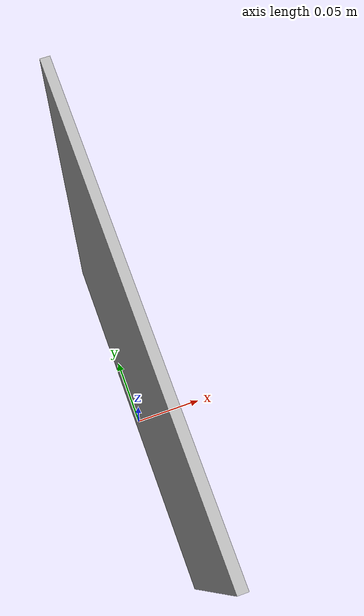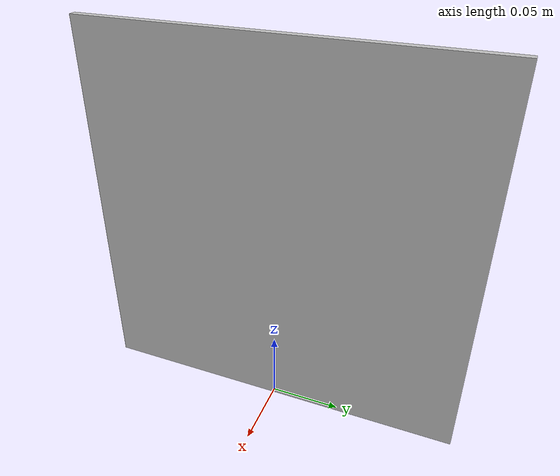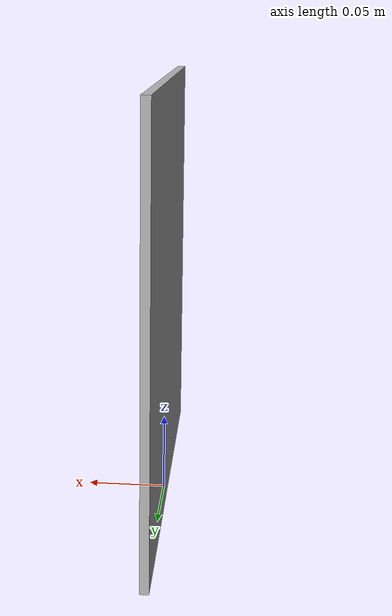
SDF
<?xml version="1.0" ?><sdf version="1.4">
  <model name="5x5_1000-700">
    <static>true</static>
    <link name="link">
      <visual name="visual">
        <geometry>
          <mesh>
            <uri>model://5x5_1000-700/meshes/5x5_1000-700.dae</uri>
          <scale>0.54 0.54 0.54</scale></mesh>
        </geometry>
      </visual>
    </link>
  </model>
</sdf>
